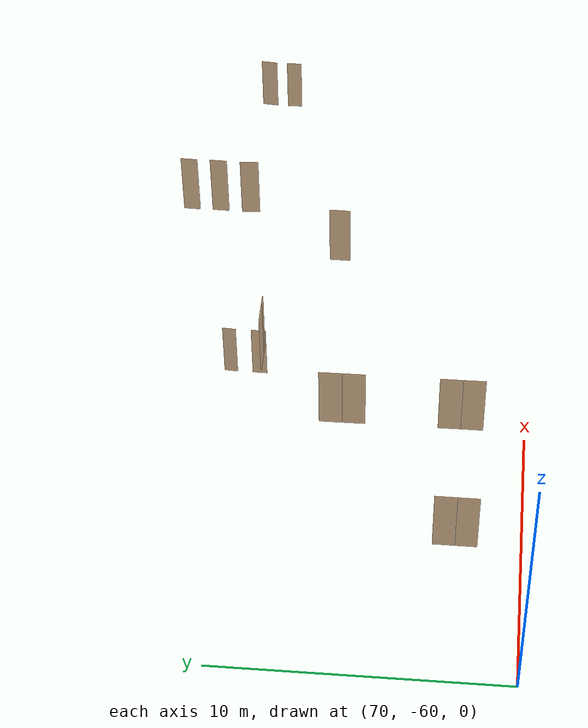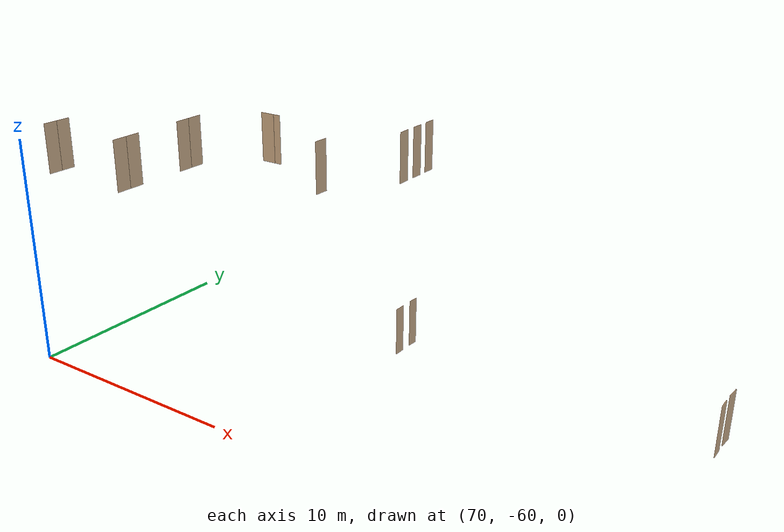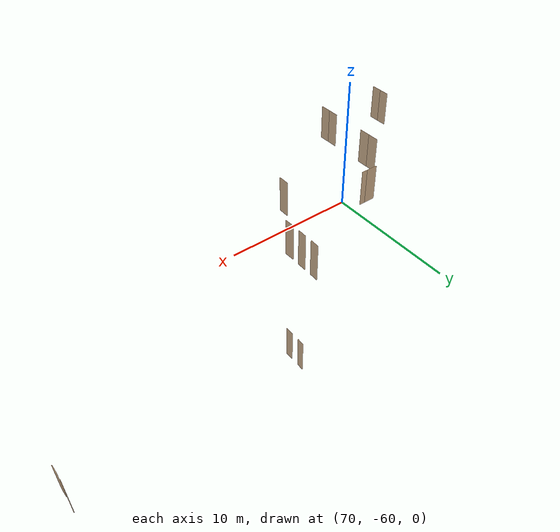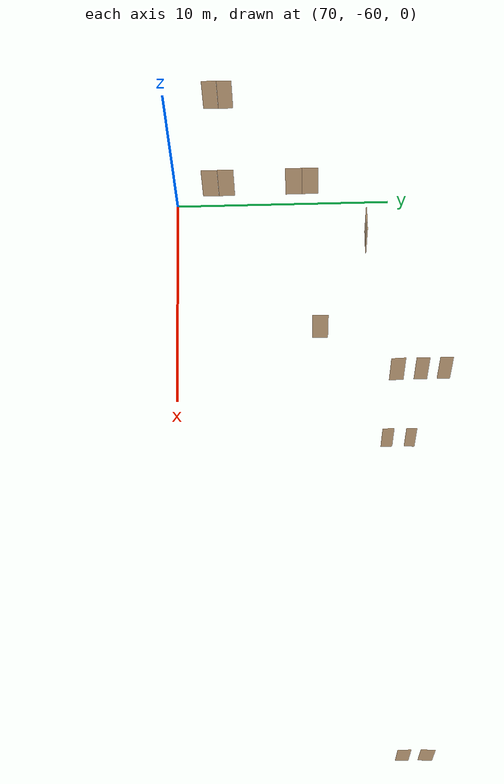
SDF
<sdf version="1.7">
 <world name="sim_world">
  <model name="bano013">
   <pose>82.40057625517343 -49.518308076902656 0.0 0 0 1.5131615643267342</pose>
   <link name="right">
    <pose>0 0 1.11 0 0 0</pose>
    <visual name="right_visual">
     <geometry><box><size>0.4661509275095324 0.03 2.2</size></box></geometry>
     <material>
      <ambient>0.5 0.25 0 0.6</ambient>
      <diffuse>0.5 0.25 0 0.6</diffuse>
      <pbr><metal><metalness>0.0</metalness></metal></pbr>
     </material>
    </visual>
    <collision name="right_collision">
     <geometry><box><size>0.4661509275095324 0.03 2.2</size></box></geometry>
     <surface><contact><collide_bitmask>0x02</collide_bitmask></contact></surface>
    </collision>
    <inertial>
     <mass>50.0</mass>
     <inertia><ixx>20.17041666666667</ixx><iyy>21.072069530074995</iyy><izz>0.9091528634083224</izz></inertia>
    </inertial>
   </link>
   <joint name="right_joint" type="revolute">
    <parent>world</parent>
    <child>right</child>
    <axis><xyz>0 0 -1</xyz><limit><lower>0</lower><upper>1.57</upper></limit></axis>
    <pose>0.2380754637547662 0 0 0 0 0</pose>
   </joint>
   <plugin name="register_component" filename="libregister_component.so">
    <component name="Door">
     <v_max_door>0.5</v_max_door>
     <a_max_door>0.3</a_max_door>
     <a_nom_door>0.15</a_nom_door>
     <dx_min_door>0.01</dx_min_door>
     <f_max_door>500.0</f_max_door>
     <ros_interface>true</ros_interface>
     <door name="bano013" type="SwingDoor" left_joint_name="empty_joint" right_joint_name="right_joint"/>
    </component>
   </plugin>
  </model>
  <model name="bano014">
   <pose>82.38686242766777 -50.54673291538013 0.0 0 0 1.5707963267948966</pose>
   <link name="right">
    <pose>0 0 1.11 0 0 0</pose>
    <visual name="right_visual">
     <geometry><box><size>0.5110581105468108 0.03 2.2</size></box></geometry>
     <material>
      <ambient>0.5 0.25 0 0.6</ambient>
      <diffuse>0.5 0.25 0 0.6</diffuse>
      <pbr><metal><metalness>0.0</metalness></metal></pbr>
     </material>
    </visual>
    <collision name="right_collision">
     <geometry><box><size>0.5110581105468108 0.03 2.2</size></box></geometry>
     <surface><contact><collide_bitmask>0x02</collide_bitmask></contact></surface>
    </collision>
    <inertial>
     <mass>50.0</mass>
     <inertia><ixx>20.17041666666667</ixx><iyy>21.25491830148199</iyy><izz>1.092001634815318</izz></inertia>
    </inertial>
   </link>
   <joint name="right_joint" type="revolute">
    <parent>world</parent>
    <child>right</child>
    <axis><xyz>0 0 -1</xyz><limit><lower>0</lower><upper>1.57</upper></limit></axis>
    <pose>0.2605290552734054 0 0 0 0 0</pose>
   </joint>
   <plugin name="register_component" filename="libregister_component.so">
    <component name="Door">
     <v_max_door>0.5</v_max_door>
     <a_max_door>0.3</a_max_door>
     <a_nom_door>0.15</a_nom_door>
     <dx_min_door>0.01</dx_min_door>
     <f_max_door>500.0</f_max_door>
     <ros_interface>true</ros_interface>
     <door name="bano014" type="SwingDoor" left_joint_name="empty_joint" right_joint_name="right_joint"/>
    </component>
   </plugin>
  </model>
  <model name="bano019">
   <pose>96.59748511829628 -49.48174535185072 0.0 0 0 1.495199436193495</pose>
   <link name="right">
    <pose>0 0 1.11 0 0 0</pose>
    <visual name="right_visual">
     <geometry><box><size>0.5950692042728132 0.03 2.2</size></box></geometry>
     <material>
      <ambient>0.5 0.25 0 0.6</ambient>
      <diffuse>0.5 0.25 0 0.6</diffuse>
      <pbr><metal><metalness>0.0</metalness></metal></pbr>
     </material>
    </visual>
    <collision name="right_collision">
     <geometry><box><size>0.5950692042728132 0.03 2.2</size></box></geometry>
     <surface><contact><collide_bitmask>0x02</collide_bitmask></contact></surface>
    </collision>
    <inertial>
     <mass>50.0</mass>
     <inertia><ixx>20.17041666666667</ixx><iyy>21.642113991141166</iyy><izz>1.479197324474496</izz></inertia>
    </inertial>
   </link>
   <joint name="right_joint" type="revolute">
    <parent>world</parent>
    <child>right</child>
    <axis><xyz>0 0 1</xyz><limit><lower>0</lower><upper>1.57</upper></limit></axis>
    <pose>0.3025346021364066 0 0 0 0 0</pose>
   </joint>
   <plugin name="register_component" filename="libregister_component.so">
    <component name="Door">
     <v_max_door>0.5</v_max_door>
     <a_max_door>0.3</a_max_door>
     <a_nom_door>0.15</a_nom_door>
     <dx_min_door>0.01</dx_min_door>
     <f_max_door>500.0</f_max_door>
     <ros_interface>true</ros_interface>
     <door name="bano019" type="SwingDoor" left_joint_name="empty_joint" right_joint_name="right_joint"/>
    </component>
   </plugin>
  </model>
  <model name="bano020">
   <pose>96.5792037557703 -50.459882415325815 0.0 0 0 1.5869124666132146</pose>
   <link name="right">
    <pose>0 0 1.11 0 0 0</pose>
    <visual name="right_visual">
     <geometry><box><size>0.5568519631551812 0.03 2.2</size></box></geometry>
     <material>
      <ambient>0.5 0.25 0 0.6</ambient>
      <diffuse>0.5 0.25 0 0.6</diffuse>
      <pbr><metal><metalness>0.0</metalness></metal></pbr>
     </material>
    </visual>
    <collision name="right_collision">
     <geometry><box><size>0.5568519631551812 0.03 2.2</size></box></geometry>
     <surface><contact><collide_bitmask>0x02</collide_bitmask></contact></surface>
    </collision>
    <inertial>
     <mass>50.0</mass>
     <inertia><ixx>20.17041666666667</ixx><iyy>21.45868378695742</iyy><izz>1.2957671202907468</izz></inertia>
    </inertial>
   </link>
   <joint name="right_joint" type="revolute">
    <parent>world</parent>
    <child>right</child>
    <axis><xyz>0 0 1</xyz><limit><lower>0</lower><upper>1.57</upper></limit></axis>
    <pose>0.2834259815775906 0 0 0 0 0</pose>
   </joint>
   <plugin name="register_component" filename="libregister_component.so">
    <component name="Door">
     <v_max_door>0.5</v_max_door>
     <a_max_door>0.3</a_max_door>
     <a_nom_door>0.15</a_nom_door>
     <dx_min_door>0.01</dx_min_door>
     <f_max_door>500.0</f_max_door>
     <ros_interface>true</ros_interface>
     <door name="bano020" type="SwingDoor" left_joint_name="empty_joint" right_joint_name="right_joint"/>
    </component>
   </plugin>
  </model>
  <model name="TD0120AI">
   <pose>69.458115087851 -57.717003443619944 8.0 0 0 -1.5734051330332963</pose>
   <link name="right">
    <pose>0.3240667100073321 0 1.11 0 0 0</pose>
    <visual name="right_visual">
     <geometry><box><size>0.6381334200146642 0.03 2.2</size></box></geometry>
     <material>
      <ambient>0.5 0.25 0 0.6</ambient>
      <diffuse>0.5 0.25 0 0.6</diffuse>
      <pbr><metal><metalness>0.0</metalness></metal></pbr>
     </material>
    </visual>
    <collision name="right_collision">
     <geometry><box><size>0.6381334200146642 0.03 2.2</size></box></geometry>
     <surface><contact><collide_bitmask>0x02</collide_bitmask></contact></surface>
    </collision>
    <inertial>
     <mass>50.0</mass>
     <inertia><ixx>20.17041666666667</ixx><iyy>21.863392757248388</iyy><izz>1.7004760905817162</izz></inertia>
    </inertial>
   </link>
   <joint name="right_joint" type="revolute">
    <parent>world</parent>
    <child>right</child>
    <axis><xyz>0 0 -1</xyz><limit><lower>0</lower><upper>1.57</upper></limit></axis>
    <pose>0.3240667100073321 0 0 0 0 0</pose>
   </joint>
   <link name="left">
    <pose>-0.3240667100073321 0 1.11 0 0 0</pose>
    <visual name="left_visual">
     <geometry><box><size>0.6381334200146642 0.03 2.2</size></box></geometry>
     <material>
      <ambient>0.5 0.25 0 0.6</ambient>
      <diffuse>0.5 0.25 0 0.6</diffuse>
      <pbr><metal><metalness>0.0</metalness></metal></pbr>
     </material>
    </visual>
    <collision name="left_collision">
     <geometry><box><size>0.6381334200146642 0.03 2.2</size></box></geometry>
     <surface><contact><collide_bitmask>0x02</collide_bitmask></contact></surface>
    </collision>
    <inertial>
     <mass>50.0</mass>
     <inertia><ixx>20.17041666666667</ixx><iyy>21.863392757248388</iyy><izz>1.7004760905817162</izz></inertia>
    </inertial>
   </link>
   <joint name="left_joint" type="revolute">
    <parent>world</parent>
    <child>left</child>
    <axis><xyz>0 0 -1</xyz><limit><lower>-1.57</lower><upper>0</upper></limit></axis>
    <pose>-0.3240667100073321 0 0 0 0 0</pose>
   </joint>
   <plugin name="register_component" filename="libregister_component.so">
    <component name="Door">
     <v_max_door>0.5</v_max_door>
     <a_max_door>0.3</a_max_door>
     <a_nom_door>0.15</a_nom_door>
     <dx_min_door>0.01</dx_min_door>
     <f_max_door>500.0</f_max_door>
     <ros_interface>true</ros_interface>
     <door name="TD0120AI" type="DoubleSwingDoor" left_joint_name="left_joint" right_joint_name="right_joint"/>
    </component>
   </plugin>
  </model>
  <model name="TD0102AI">
   <pose>73.75508046016452 -57.70424779287917 8.0 0 0 1.5769013709534752</pose>
   <link name="right">
    <pose>0.33995202967899124 0 1.11 0 0 0</pose>
    <visual name="right_visual">
     <geometry><box><size>0.6699040593579825 0.03 2.2</size></box></geometry>
     <material>
      <ambient>0.5 0.25 0 0.6</ambient>
      <diffuse>0.5 0.25 0 0.6</diffuse>
      <pbr><metal><metalness>0.0</metalness></metal></pbr>
     </material>
    </visual>
    <collision name="right_collision">
     <geometry><box><size>0.6699040593579825 0.03 2.2</size></box></geometry>
     <surface><contact><collide_bitmask>0x02</collide_bitmask></contact></surface>
    </collision>
    <inertial>
     <mass>50.0</mass>
     <inertia><ixx>20.17041666666667</ixx><iyy>22.03654770310127</iyy><izz>1.8736310364345974</izz></inertia>
    </inertial>
   </link>
   <joint name="right_joint" type="revolute">
    <parent>world</parent>
    <child>right</child>
    <axis><xyz>0 0 -1</xyz><limit><lower>0</lower><upper>1.57</upper></limit></axis>
    <pose>0.33995202967899124 0 0 0 0 0</pose>
   </joint>
   <link name="left">
    <pose>-0.33995202967899124 0 1.11 0 0 0</pose>
    <visual name="left_visual">
     <geometry><box><size>0.6699040593579825 0.03 2.2</size></box></geometry>
     <material>
      <ambient>0.5 0.25 0 0.6</ambient>
      <diffuse>0.5 0.25 0 0.6</diffuse>
      <pbr><metal><metalness>0.0</metalness></metal></pbr>
     </material>
    </visual>
    <collision name="left_collision">
     <geometry><box><size>0.6699040593579825 0.03 2.2</size></box></geometry>
     <surface><contact><collide_bitmask>0x02</collide_bitmask></contact></surface>
    </collision>
    <inertial>
     <mass>50.0</mass>
     <inertia><ixx>20.17041666666667</ixx><iyy>22.03654770310127</iyy><izz>1.8736310364345974</izz></inertia>
    </inertial>
   </link>
   <joint name="left_joint" type="revolute">
    <parent>world</parent>
    <child>left</child>
    <axis><xyz>0 0 -1</xyz><limit><lower>-1.57</lower><upper>0</upper></limit></axis>
    <pose>-0.33995202967899124 0 0 0 0 0</pose>
   </joint>
   <plugin name="register_component" filename="libregister_component.so">
    <component name="Door">
     <v_max_door>0.5</v_max_door>
     <a_max_door>0.3</a_max_door>
     <a_nom_door>0.15</a_nom_door>
     <dx_min_door>0.01</dx_min_door>
     <f_max_door>500.0</f_max_door>
     <ros_interface>true</ros_interface>
     <door name="TD0102AI" type="DoubleSwingDoor" left_joint_name="left_joint" right_joint_name="right_joint"/>
    </component>
   </plugin>
  </model>
  <model name="TD0101AO1">
   <pose>73.73628791282093 -54.16554616453085 8.0 0 0 1.5796660583711413</pose>
   <link name="right">
    <pose>0.3480341851671836 0 1.11 0 0 0</pose>
    <visual name="right_visual">
     <geometry><box><size>0.6860683703343672 0.03 2.2</size></box></geometry>
     <material>
      <ambient>0.5 0.25 0 0.6</ambient>
      <diffuse>0.5 0.25 0 0.6</diffuse>
      <pbr><metal><metalness>0.0</metalness></metal></pbr>
     </material>
    </visual>
    <collision name="right_collision">
     <geometry><box><size>0.6860683703343672 0.03 2.2</size></box></geometry>
     <surface><contact><collide_bitmask>0x02</collide_bitmask></contact></surface>
    </collision>
    <inertial>
     <mass>50.0</mass>
     <inertia><ixx>20.17041666666667</ixx><iyy>22.1278742032219</iyy><izz>1.9649575365552268</izz></inertia>
    </inertial>
   </link>
   <joint name="right_joint" type="revolute">
    <parent>world</parent>
    <child>right</child>
    <axis><xyz>0 0 -1</xyz><limit><lower>0</lower><upper>1.57</upper></limit></axis>
    <pose>0.3480341851671836 0 0 0 0 0</pose>
   </joint>
   <link name="left">
    <pose>-0.3480341851671836 0 1.11 0 0 0</pose>
    <visual name="left_visual">
     <geometry><box><size>0.6860683703343672 0.03 2.2</size></box></geometry>
     <material>
      <ambient>0.5 0.25 0 0.6</ambient>
      <diffuse>0.5 0.25 0 0.6</diffuse>
      <pbr><metal><metalness>0.0</metalness></metal></pbr>
     </material>
    </visual>
    <collision name="left_collision">
     <geometry><box><size>0.6860683703343672 0.03 2.2</size></box></geometry>
     <surface><contact><collide_bitmask>0x02</collide_bitmask></contact></surface>
    </collision>
    <inertial>
     <mass>50.0</mass>
     <inertia><ixx>20.17041666666667</ixx><iyy>22.1278742032219</iyy><izz>1.9649575365552268</izz></inertia>
    </inertial>
   </link>
   <joint name="left_joint" type="revolute">
    <parent>world</parent>
    <child>left</child>
    <axis><xyz>0 0 -1</xyz><limit><lower>-1.57</lower><upper>0</upper></limit></axis>
    <pose>-0.3480341851671836 0 0 0 0 0</pose>
   </joint>
   <plugin name="register_component" filename="libregister_component.so">
    <component name="Door">
     <v_max_door>0.5</v_max_door>
     <a_max_door>0.3</a_max_door>
     <a_nom_door>0.15</a_nom_door>
     <dx_min_door>0.01</dx_min_door>
     <f_max_door>500.0</f_max_door>
     <ros_interface>true</ros_interface>
     <door name="TD0101AO1" type="DoubleSwingDoor" left_joint_name="left_joint" right_joint_name="right_joint"/>
    </component>
   </plugin>
  </model>
  <model name="TD0111AO">
   <pose>76.117156318815 -51.53420214612608 8.0 0 0 0.00017906532679788667</pose>
   <link name="right">
    <pose>0.3436496657607462 0 1.11 0 0 0</pose>
    <visual name="right_visual">
     <geometry><box><size>0.3336496657607462 0.03 2.2</size></box></geometry>
     <material>
      <ambient>0.5 0.25 0 0.6</ambient>
      <diffuse>0.5 0.25 0 0.6</diffuse>
      <pbr><metal><metalness>0.0</metalness></metal></pbr>
     </material>
    </visual>
    <collision name="right_collision">
     <geometry><box><size>0.3336496657607462 0.03 2.2</size></box></geometry>
     <surface><contact><collide_bitmask>0x02</collide_bitmask></contact></surface>
    </collision>
    <inertial>
     <mass>50.0</mass>
     <inertia><ixx>20.17041666666667</ixx><iyy>20.63050874775941</iyy><izz>0.4675920810927402</izz></inertia>
    </inertial>
   </link>
   <joint name="right_joint" type="revolute">
    <parent>world</parent>
    <child>right</child>
    <axis><xyz>0 0 -1</xyz><limit><lower>0</lower><upper>1.57</upper></limit></axis>
    <pose>0.1718248328803731 0 0 0 0 0</pose>
   </joint>
   <link name="left">
    <pose>-0.1718248328803731 0 1.11 0 0 0</pose>
    <visual name="left_visual">
     <geometry><box><size>0.6772993315214924 0.03 2.2</size></box></geometry>
     <material>
      <ambient>0.5 0.25 0 0.6</ambient>
      <diffuse>0.5 0.25 0 0.6</diffuse>
      <pbr><metal><metalness>0.0</metalness></metal></pbr>
     </material>
    </visual>
    <collision name="left_collision">
     <geometry><box><size>0.6772993315214924 0.03 2.2</size></box></geometry>
     <surface><contact><collide_bitmask>0x02</collide_bitmask></contact></surface>
    </collision>
    <inertial>
     <mass>50.0</mass>
     <inertia><ixx>20.17041666666667</ixx><iyy>22.07805993533109</iyy><izz>1.9151432686644185</izz></inertia>
    </inertial>
   </link>
   <joint name="left_joint" type="revolute">
    <parent>world</parent>
    <child>left</child>
    <axis><xyz>0 0 -1</xyz><limit><lower>-1.57</lower><upper>0</upper></limit></axis>
    <pose>-0.3436496657607462 0 0 0 0 0</pose>
   </joint>
   <plugin name="register_component" filename="libregister_component.so">
    <component name="Door">
     <v_max_door>0.5</v_max_door>
     <a_max_door>0.3</a_max_door>
     <a_nom_door>0.15</a_nom_door>
     <dx_min_door>0.01</dx_min_door>
     <f_max_door>500.0</f_max_door>
     <ros_interface>true</ros_interface>
     <door name="TD0111AO" type="DoubleSwingDoor" left_joint_name="left_joint" right_joint_name="right_joint"/>
    </component>
   </plugin>
  </model>
  <model name="TD0101AO2">
   <pose>80.46225319380048 -53.56661356564936 8.0 0 0 -1.5821062922475102</pose>
   <link name="right">
    <pose>0 0 1.11 0 0 0</pose>
    <visual name="right_visual">
     <geometry><box><size>0.6464568341391322 0.03 2.2</size></box></geometry>
     <material>
      <ambient>0.5 0.25 0 0.6</ambient>
      <diffuse>0.5 0.25 0 0.6</diffuse>
      <pbr><metal><metalness>0.0</metalness></metal></pbr>
     </material>
    </visual>
    <collision name="right_collision">
     <geometry><box><size>0.6464568341391322 0.03 2.2</size></box></geometry>
     <surface><contact><collide_bitmask>0x02</collide_bitmask></contact></surface>
    </collision>
    <inertial>
     <mass>50.0</mass>
     <inertia><ixx>20.17041666666667</ixx><iyy>21.907943493354963</iyy><izz>1.74502682668829</izz></inertia>
    </inertial>
   </link>
   <joint name="right_joint" type="revolute">
    <parent>world</parent>
    <child>right</child>
    <axis><xyz>0 0 1</xyz><limit><lower>0</lower><upper>1.57</upper></limit></axis>
    <pose>0.3282284170695661 0 0 0 0 0</pose>
   </joint>
   <plugin name="register_component" filename="libregister_component.so">
    <component name="Door">
     <v_max_door>0.5</v_max_door>
     <a_max_door>0.3</a_max_door>
     <a_nom_door>0.15</a_nom_door>
     <dx_min_door>0.01</dx_min_door>
     <f_max_door>500.0</f_max_door>
     <ros_interface>true</ros_interface>
     <door name="TD0101AO2" type="SwingDoor" left_joint_name="empty_joint" right_joint_name="right_joint"/>
    </component>
   </plugin>
  </model>
  <model name="bano12">
   <pose>82.42250377956982 -48.55080670870155 8.0 0 0 1.549933353693263</pose>
   <link name="right">
    <pose>0 0 1.11 0 0 0</pose>
    <visual name="right_visual">
     <geometry><box><size>0.5266028313164499 0.03 2.2</size></box></geometry>
     <material>
      <ambient>0.5 0.25 0 0.6</ambient>
      <diffuse>0.5 0.25 0 0.6</diffuse>
      <pbr><metal><metalness>0.0</metalness></metal></pbr>
     </material>
    </visual>
    <collision name="right_collision">
     <geometry><box><size>0.5266028313164499 0.03 2.2</size></box></geometry>
     <surface><contact><collide_bitmask>0x02</collide_bitmask></contact></surface>
    </collision>
    <inertial>
     <mass>50.0</mass>
     <inertia><ixx>20.17041666666667</ixx><iyy>21.322127258127093</iyy><izz>1.1592105914604227</izz></inertia>
    </inertial>
   </link>
   <joint name="right_joint" type="revolute">
    <parent>world</parent>
    <child>right</child>
    <axis><xyz>0 0 -1</xyz><limit><lower>0</lower><upper>1.57</upper></limit></axis>
    <pose>0.26830141565822496 0 0 0 0 0</pose>
   </joint>
   <plugin name="register_component" filename="libregister_component.so">
    <component name="Door">
     <v_max_door>0.5</v_max_door>
     <a_max_door>0.3</a_max_door>
     <a_nom_door>0.15</a_nom_door>
     <dx_min_door>0.01</dx_min_door>
     <f_max_door>500.0</f_max_door>
     <ros_interface>true</ros_interface>
     <door name="bano12" type="SwingDoor" left_joint_name="empty_joint" right_joint_name="right_joint"/>
    </component>
   </plugin>
  </model>
  <model name="bano13">
   <pose>82.4238737200315 -49.49501255397513 8.0 0 0 1.554816171932805</pose>
   <link name="right">
    <pose>0 0 1.11 0 0 0</pose>
    <visual name="right_visual">
     <geometry><box><size>0.5400908523598633 0.03 2.2</size></box></geometry>
     <material>
      <ambient>0.5 0.25 0 0.6</ambient>
      <diffuse>0.5 0.25 0 0.6</diffuse>
      <pbr><metal><metalness>0.0</metalness></metal></pbr>
     </material>
    </visual>
    <collision name="right_collision">
     <geometry><box><size>0.5400908523598633 0.03 2.2</size></box></geometry>
     <surface><contact><collide_bitmask>0x02</collide_bitmask></contact></surface>
    </collision>
    <inertial>
     <mass>50.0</mass>
     <inertia><ixx>20.17041666666667</ixx><iyy>21.38207553667835</iyy><izz>1.219158870011682</izz></inertia>
    </inertial>
   </link>
   <joint name="right_joint" type="revolute">
    <parent>world</parent>
    <child>right</child>
    <axis><xyz>0 0 -1</xyz><limit><lower>0</lower><upper>1.57</upper></limit></axis>
    <pose>0.27504542617993166 0 0 0 0 0</pose>
   </joint>
   <plugin name="register_component" filename="libregister_component.so">
    <component name="Door">
     <v_max_door>0.5</v_max_door>
     <a_max_door>0.3</a_max_door>
     <a_nom_door>0.15</a_nom_door>
     <dx_min_door>0.01</dx_min_door>
     <f_max_door>500.0</f_max_door>
     <ros_interface>true</ros_interface>
     <door name="bano13" type="SwingDoor" left_joint_name="empty_joint" right_joint_name="right_joint"/>
    </component>
   </plugin>
  </model>
  <model name="bano14">
   <pose>82.4262059273079 -50.48561429947538 8.0 0 0 1.6109163680434315</pose>
   <link name="right">
    <pose>0 0 1.11 0 0 0</pose>
    <visual name="right_visual">
     <geometry><box><size>0.5847346024385863 0.03 2.2</size></box></geometry>
     <material>
      <ambient>0.5 0.25 0 0.6</ambient>
      <diffuse>0.5 0.25 0 0.6</diffuse>
      <pbr><metal><metalness>0.0</metalness></metal></pbr>
     </material>
    </visual>
    <collision name="right_collision">
     <geometry><box><size>0.5847346024385863 0.03 2.2</size></box></geometry>
     <surface><contact><collide_bitmask>0x02</collide_bitmask></contact></surface>
    </collision>
    <inertial>
     <mass>50.0</mass>
     <inertia><ixx>20.17041666666667</ixx><iyy>21.591310647037552</iyy><izz>1.4283939803708818</izz></inertia>
    </inertial>
   </link>
   <joint name="right_joint" type="revolute">
    <parent>world</parent>
    <child>right</child>
    <axis><xyz>0 0 -1</xyz><limit><lower>0</lower><upper>1.57</upper></limit></axis>
    <pose>0.29736730121929317 0 0 0 0 0</pose>
   </joint>
   <plugin name="register_component" filename="libregister_component.so">
    <component name="Door">
     <v_max_door>0.5</v_max_door>
     <a_max_door>0.3</a_max_door>
     <a_nom_door>0.15</a_nom_door>
     <dx_min_door>0.01</dx_min_door>
     <f_max_door>500.0</f_max_door>
     <ros_interface>true</ros_interface>
     <door name="bano14" type="SwingDoor" left_joint_name="empty_joint" right_joint_name="right_joint"/>
    </component>
   </plugin>
  </model>
 </world>
</sdf>
